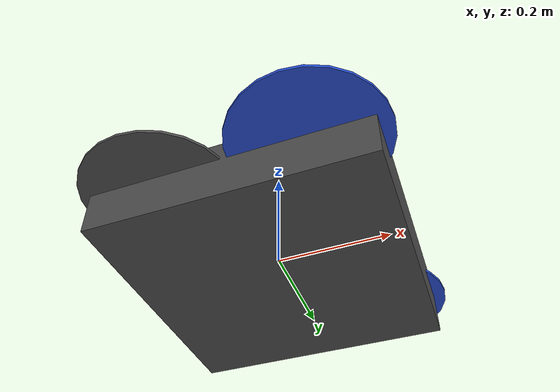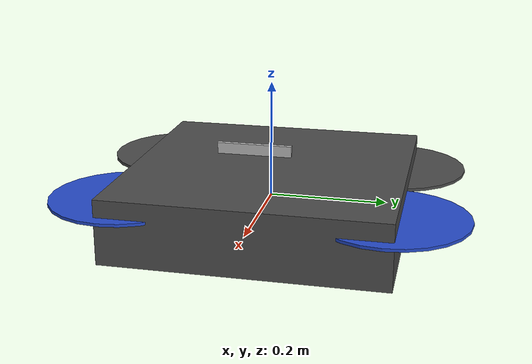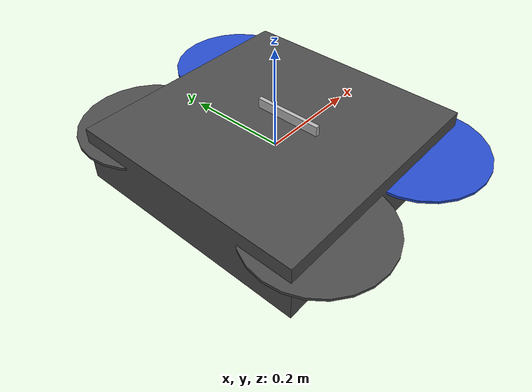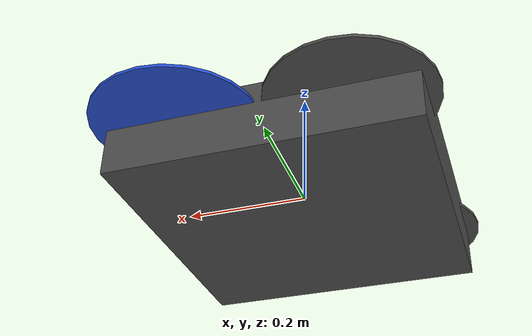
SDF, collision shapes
<sdf version='1.6'>
  <model name='iris_d435'>
    <link name='base_link'>
      <pose frame=''>0 0 0 0 -0 0</pose>
      <inertial>
        <pose frame=''>0 0 0 0 -0 0</pose>
        <mass>1.5</mass>
        <inertia>
          <ixx>0.0347563</ixx>
          <ixy>0</ixy>
          <ixz>0</ixz>
          <iyy>0.0458929</iyy>
          <iyz>0</iyz>
          <izz>0.0977</izz>
        </inertia>
      </inertial>
      <collision name='base_link_inertia_collision'>
        <pose frame=''>0 0 0 0 -0 0</pose>
        <geometry>
          <box>
            <size>0.47 0.47 0.11</size>
          </box>
        </geometry>
        <surface>
          <contact>
            <ode>
              <min_depth>0.001</min_depth>
              <max_vel>0</max_vel>
            </ode>
          </contact>
          <friction>
            <ode/>
          </friction>
        </surface>
      </collision>
      <visual name='base_link_inertia_visual'>
        <pose frame=''>0 0 0 0 -0 0</pose>
        <geometry>
          <mesh>
            <scale>1 1 1</scale>
            <uri>model://rotors_description/meshes/iris.stl</uri>
          </mesh>
        </geometry>
        <material>
          <script>
            <name>Gazebo/DarkGrey</name>
            <uri>file://media/materials/scripts/gazebo.material</uri>
          </script>
        </material>
      </visual>
      <gravity>1</gravity>
      <velocity_decay/>
    </link>
    <link name='/imu_link'>
      <pose frame=''>0 0 0 0 -0 0</pose>
      <inertial>
        <pose frame=''>0 0 0 0 -0 0</pose>
        <mass>0.015</mass>
        <inertia>
          <ixx>1e-05</ixx>
          <ixy>0</ixy>
          <ixz>0</ixz>
          <iyy>1e-05</iyy>
          <iyz>0</iyz>
          <izz>1e-05</izz>
        </inertia>
      </inertial>
    </link>
    <joint name='/imu_joint' type='revolute'>
      <child>/imu_link</child>
      <parent>base_link</parent>
      <axis>
        <xyz>1 0 0</xyz>
        <limit>
          <lower>0</lower>
          <upper>0</upper>
          <effort>0</effort>
          <velocity>0</velocity>
        </limit>
        <dynamics>
          <spring_reference>0</spring_reference>
          <spring_stiffness>0</spring_stiffness>
        </dynamics>
        <use_parent_model_frame>1</use_parent_model_frame>
      </axis>
    </joint>
    <link name='rotor_0'>
      <pose frame=''>0.13 -0.22 0.023 0 -0 0</pose>
      <inertial>
        <pose frame=''>0 0 0 0 -0 0</pose>
        <mass>0.005</mass>
        <inertia>
          <ixx>9.75e-07</ixx>
          <ixy>0</ixy>
          <ixz>0</ixz>
          <iyy>0.000273104</iyy>
          <iyz>0</iyz>
          <izz>0.000274004</izz>
        </inertia>
      </inertial>
      <collision name='rotor_0_collision'>
        <pose frame=''>0 0 0 0 -0 0</pose>
        <geometry>
          <cylinder>
            <length>0.005</length>
            <radius>0.128</radius>
          </cylinder>
        </geometry>
        <surface>
          <contact>
            <ode/>
          </contact>
          <friction>
            <ode/>
          </friction>
        </surface>
      </collision>
      <visual name='rotor_0_visual'>
        <pose frame=''>0 0 0 0 -0 0</pose>
        <geometry>
          <mesh>
            <scale>1 1 1</scale>
            <uri>model://rotors_description/meshes/iris_prop_ccw.dae</uri>
          </mesh>
        </geometry>
        <material>
          <script>
            <name>Gazebo/Blue</name>
            <uri>file://media/materials/scripts/gazebo.material</uri>
          </script>
        </material>
      </visual>
      <gravity>1</gravity>
      <velocity_decay/>
    </link>
    <joint name='rotor_0_joint' type='revolute'>
      <child>rotor_0</child>
      <parent>base_link</parent>
      <axis>
        <xyz>0 0 1</xyz>
        <limit>
          <lower>-1e+16</lower>
          <upper>1e+16</upper>
        </limit>
        <dynamics>
          <spring_reference>0</spring_reference>
          <spring_stiffness>0</spring_stiffness>
        </dynamics>
        <use_parent_model_frame>1</use_parent_model_frame>
      </axis>
    </joint>
    <link name='rotor_1'>
      <pose frame=''>-0.13 0.2 0.023 0 -0 0</pose>
      <inertial>
        <pose frame=''>0 0 0 0 -0 0</pose>
        <mass>0.005</mass>
        <inertia>
          <ixx>9.75e-07</ixx>
          <ixy>0</ixy>
          <ixz>0</ixz>
          <iyy>0.000273104</iyy>
          <iyz>0</iyz>
          <izz>0.000274004</izz>
        </inertia>
      </inertial>
      <collision name='rotor_1_collision'>
        <pose frame=''>0 0 0 0 -0 0</pose>
        <geometry>
          <cylinder>
            <length>0.005</length>
            <radius>0.128</radius>
          </cylinder>
        </geometry>
        <surface>
          <contact>
            <ode/>
          </contact>
          <friction>
            <ode/>
          </friction>
        </surface>
      </collision>
      <visual name='rotor_1_visual'>
        <pose frame=''>0 0 0 0 -0 0</pose>
        <geometry>
          <mesh>
            <scale>1 1 1</scale>
            <uri>model://rotors_description/meshes/iris_prop_ccw.dae</uri>
          </mesh>
        </geometry>
        <material>
          <script>
            <name>Gazebo/DarkGrey</name>
            <uri>file://media/materials/scripts/gazebo.material</uri>
          </script>
        </material>
      </visual>
      <gravity>1</gravity>
      <velocity_decay/>
    </link>
    <joint name='rotor_1_joint' type='revolute'>
      <child>rotor_1</child>
      <parent>base_link</parent>
      <axis>
        <xyz>0 0 1</xyz>
        <limit>
          <lower>-1e+16</lower>
          <upper>1e+16</upper>
        </limit>
        <dynamics>
          <spring_reference>0</spring_reference>
          <spring_stiffness>0</spring_stiffness>
        </dynamics>
        <use_parent_model_frame>1</use_parent_model_frame>
      </axis>
    </joint>
    <link name='rotor_2'>
      <pose frame=''>0.13 0.22 0.023 0 -0 0</pose>
      <inertial>
        <pose frame=''>0 0 0 0 -0 0</pose>
        <mass>0.005</mass>
        <inertia>
          <ixx>9.75e-07</ixx>
          <ixy>0</ixy>
          <ixz>0</ixz>
          <iyy>0.000273104</iyy>
          <iyz>0</iyz>
          <izz>0.000274004</izz>
        </inertia>
      </inertial>
      <collision name='rotor_2_collision'>
        <pose frame=''>0 0 0 0 -0 0</pose>
        <geometry>
          <cylinder>
            <length>0.005</length>
            <radius>0.128</radius>
          </cylinder>
        </geometry>
        <surface>
          <contact>
            <ode/>
          </contact>
          <friction>
            <ode/>
          </friction>
        </surface>
      </collision>
      <visual name='rotor_2_visual'>
        <pose frame=''>0 0 0 0 -0 0</pose>
        <geometry>
          <mesh>
            <scale>1 1 1</scale>
            <uri>model://rotors_description/meshes/iris_prop_cw.dae</uri>
          </mesh>
        </geometry>
        <material>
          <script>
            <name>Gazebo/Blue</name>
            <uri>file://media/materials/scripts/gazebo.material</uri>
          </script>
        </material>
      </visual>
      <gravity>1</gravity>
      <velocity_decay/>
    </link>
    <joint name='rotor_2_joint' type='revolute'>
      <child>rotor_2</child>
      <parent>base_link</parent>
      <axis>
        <xyz>0 0 1</xyz>
        <limit>
          <lower>-1e+16</lower>
          <upper>1e+16</upper>
        </limit>
        <dynamics>
          <spring_reference>0</spring_reference>
          <spring_stiffness>0</spring_stiffness>
        </dynamics>
        <use_parent_model_frame>1</use_parent_model_frame>
      </axis>
    </joint>
    <link name='rotor_3'>
      <pose frame=''>-0.13 -0.2 0.023 0 -0 0</pose>
      <inertial>
        <pose frame=''>0 0 0 0 -0 0</pose>
        <mass>0.005</mass>
        <inertia>
          <ixx>9.75e-07</ixx>
          <ixy>0</ixy>
          <ixz>0</ixz>
          <iyy>0.000273104</iyy>
          <iyz>0</iyz>
          <izz>0.000274004</izz>
        </inertia>
      </inertial>
      <collision name='rotor_3_collision'>
        <pose frame=''>0 0 0 0 -0 0</pose>
        <geometry>
          <cylinder>
            <length>0.005</length>
            <radius>0.128</radius>
          </cylinder>
        </geometry>
        <surface>
          <contact>
            <ode/>
          </contact>
          <friction>
            <ode/>
          </friction>
        </surface>
      </collision>
      <visual name='rotor_3_visual'>
        <pose frame=''>0 0 0 0 -0 0</pose>
        <geometry>
          <mesh>
            <scale>1 1 1</scale>
            <uri>model://rotors_description/meshes/iris_prop_cw.dae</uri>
          </mesh>
        </geometry>
        <material>
          <script>
            <name>Gazebo/DarkGrey</name>
            <uri>file://media/materials/scripts/gazebo.material</uri>
          </script>
        </material>
      </visual>
      <gravity>1</gravity>
      <velocity_decay/>
    </link>
    <joint name='rotor_3_joint' type='revolute'>
      <child>rotor_3</child>
      <parent>base_link</parent>
      <axis>
        <xyz>0 0 1</xyz>
        <limit>
          <lower>-1e+16</lower>
          <upper>1e+16</upper>
        </limit>
        <dynamics>
          <spring_reference>0</spring_reference>
          <spring_stiffness>0</spring_stiffness>
        </dynamics>
        <use_parent_model_frame>1</use_parent_model_frame>
      </axis>
    </joint>
    <plugin name='rosbag' filename='libgazebo_multirotor_base_plugin.so'>
      <robotNamespace/>
      <linkName>base_link</linkName>
      <rotorVelocitySlowdownSim>10</rotorVelocitySlowdownSim>
    </plugin>
    <plugin name='front_right_motor_model' filename='libgazebo_motor_model.so'>
      <robotNamespace/>
      <jointName>rotor_0_joint</jointName>
      <linkName>rotor_0</linkName>
      <turningDirection>ccw</turningDirection>
      <timeConstantUp>0.0125</timeConstantUp>
      <timeConstantDown>0.025</timeConstantDown>
      <maxRotVelocity>1100</maxRotVelocity>
      <motorConstant>8.54858e-06</motorConstant>
      <momentConstant>0.06</momentConstant>
      <commandSubTopic>/gazebo/command/motor_speed</commandSubTopic>
      <motorNumber>0</motorNumber>
      <rotorDragCoefficient>0.000806428</rotorDragCoefficient>
      <rollingMomentCoefficient>1e-06</rollingMomentCoefficient>
      <motorSpeedPubTopic>/motor_speed/0</motorSpeedPubTopic>
      <rotorVelocitySlowdownSim>10</rotorVelocitySlowdownSim>
    </plugin>
    <plugin name='back_left_motor_model' filename='libgazebo_motor_model.so'>
      <robotNamespace/>
      <jointName>rotor_1_joint</jointName>
      <linkName>rotor_1</linkName>
      <turningDirection>ccw</turningDirection>
      <timeConstantUp>0.0125</timeConstantUp>
      <timeConstantDown>0.025</timeConstantDown>
      <maxRotVelocity>1100</maxRotVelocity>
      <motorConstant>8.54858e-06</motorConstant>
      <momentConstant>0.06</momentConstant>
      <commandSubTopic>/gazebo/command/motor_speed</commandSubTopic>
      <motorNumber>1</motorNumber>
      <rotorDragCoefficient>0.000806428</rotorDragCoefficient>
      <rollingMomentCoefficient>1e-06</rollingMomentCoefficient>
      <motorSpeedPubTopic>/motor_speed/1</motorSpeedPubTopic>
      <rotorVelocitySlowdownSim>10</rotorVelocitySlowdownSim>
    </plugin>
    <plugin name='front_left_motor_model' filename='libgazebo_motor_model.so'>
      <robotNamespace/>
      <jointName>rotor_2_joint</jointName>
      <linkName>rotor_2</linkName>
      <turningDirection>cw</turningDirection>
      <timeConstantUp>0.0125</timeConstantUp>
      <timeConstantDown>0.025</timeConstantDown>
      <maxRotVelocity>1100</maxRotVelocity>
      <motorConstant>8.54858e-06</motorConstant>
      <momentConstant>0.06</momentConstant>
      <commandSubTopic>/gazebo/command/motor_speed</commandSubTopic>
      <motorNumber>2</motorNumber>
      <rotorDragCoefficient>0.000806428</rotorDragCoefficient>
      <rollingMomentCoefficient>1e-06</rollingMomentCoefficient>
      <motorSpeedPubTopic>/motor_speed/2</motorSpeedPubTopic>
      <rotorVelocitySlowdownSim>10</rotorVelocitySlowdownSim>
    </plugin>
    <plugin name='back_right_motor_model' filename='libgazebo_motor_model.so'>
      <robotNamespace/>
      <jointName>rotor_3_joint</jointName>
      <linkName>rotor_3</linkName>
      <turningDirection>cw</turningDirection>
      <timeConstantUp>0.0125</timeConstantUp>
      <timeConstantDown>0.025</timeConstantDown>
      <maxRotVelocity>1100</maxRotVelocity>
      <motorConstant>8.54858e-06</motorConstant>
      <momentConstant>0.06</momentConstant>
      <commandSubTopic>/gazebo/command/motor_speed</commandSubTopic>
      <motorNumber>3</motorNumber>
      <rotorDragCoefficient>0.000806428</rotorDragCoefficient>
      <rollingMomentCoefficient>1e-06</rollingMomentCoefficient>
      <motorSpeedPubTopic>/motor_speed/3</motorSpeedPubTopic>
      <rotorVelocitySlowdownSim>10</rotorVelocitySlowdownSim>
    </plugin>
    <plugin name='gps_plugin' filename='libgazebo_gps_plugin.so'>
      <robotNamespace/>
      <gpsNoise>1</gpsNoise>
    </plugin>
    <plugin name='mavlink_interface' filename='libgazebo_mavlink_interface.so'>
      <robotNamespace/>
      <imuSubTopic>/imu</imuSubTopic>
      <gpsSubTopic>/gps</gpsSubTopic>
      <mavlink_addr>INADDR_ANY</mavlink_addr>
      <mavlink_udp_port>14560</mavlink_udp_port>
      <serialEnabled>0</serialEnabled>
      <serialDevice>/dev/ttyACM0</serialDevice>
      <baudRate>921600</baudRate>
      <qgc_addr>INADDR_ANY</qgc_addr>
      <qgc_udp_port>14550</qgc_udp_port>
      <hil_mode>0</hil_mode>
      <hil_state_level>0</hil_state_level>
      <vehicle_is_tailsitter>0</vehicle_is_tailsitter>
      <motorSpeedCommandPubTopic>/gazebo/command/motor_speed</motorSpeedCommandPubTopic>
      <control_channels>
        <channel name='rotor1'>
          <input_index>0</input_index>
          <input_offset>0</input_offset>
          <input_scaling>1000</input_scaling>
          <zero_position_disarmed>0</zero_position_disarmed>
          <zero_position_armed>100</zero_position_armed>
          <joint_control_type>velocity</joint_control_type>
        </channel>
        <channel name='rotor2'>
          <input_index>1</input_index>
          <input_offset>0</input_offset>
          <input_scaling>1000</input_scaling>
          <zero_position_disarmed>0</zero_position_disarmed>
          <zero_position_armed>100</zero_position_armed>
          <joint_control_type>velocity</joint_control_type>
        </channel>
        <channel name='rotor3'>
          <input_index>2</input_index>
          <input_offset>0</input_offset>
          <input_scaling>1000</input_scaling>
          <zero_position_disarmed>0</zero_position_disarmed>
          <zero_position_armed>100</zero_position_armed>
          <joint_control_type>velocity</joint_control_type>
        </channel>
        <channel name='rotor4'>
          <input_index>3</input_index>
          <input_offset>0</input_offset>
          <input_scaling>1000</input_scaling>
          <zero_position_disarmed>0</zero_position_disarmed>
          <zero_position_armed>100</zero_position_armed>
          <joint_control_type>velocity</joint_control_type>
        </channel>
        <channel name='rotor5'>
          <input_index>4</input_index>
          <input_offset>1</input_offset>
          <input_scaling>324.6</input_scaling>
          <zero_position_disarmed>0</zero_position_disarmed>
          <zero_position_armed>0</zero_position_armed>
          <joint_control_type>velocity</joint_control_type>
          <joint_control_pid>
            <p>0.1</p>
            <i>0</i>
            <d>0</d>
            <iMax>0.0</iMax>
            <iMin>0.0</iMin>
            <cmdMax>2</cmdMax>
            <cmdMin>-2</cmdMin>
          </joint_control_pid>
          <joint_name>zephyr_delta_wing::propeller_joint</joint_name>
        </channel>
        <channel name='rotor6'>
          <input_index>5</input_index>
          <input_offset>0</input_offset>
          <input_scaling>0.524</input_scaling>
          <zero_position_disarmed>0</zero_position_disarmed>
          <zero_position_armed>0</zero_position_armed>
          <joint_control_type>position</joint_control_type>
          <joint_name>zephyr_delta_wing::flap_left_joint</joint_name>
          <joint_control_pid>
            <p>10.0</p>
            <i>0</i>
            <d>0</d>
            <iMax>0</iMax>
            <iMin>0</iMin>
            <cmdMax>20</cmdMax>
            <cmdMin>-20</cmdMin>
          </joint_control_pid>
        </channel>
        <channel name='rotor7'>
          <input_index>6</input_index>
          <input_offset>0</input_offset>
          <input_scaling>0.524</input_scaling>
          <zero_position_disarmed>0</zero_position_disarmed>
          <zero_position_armed>0</zero_position_armed>
          <joint_control_type>position</joint_control_type>
          <joint_name>zephyr_delta_wing::flap_right_joint</joint_name>
          <joint_control_pid>
            <p>10.0</p>
            <i>0</i>
            <d>0</d>
            <iMax>0</iMax>
            <iMin>0</iMin>
            <cmdMax>20</cmdMax>
            <cmdMin>-20</cmdMin>
          </joint_control_pid>
        </channel>
        <channel name='rotor8'>
          <input_index>7</input_index>
          <input_offset>0</input_offset>
          <input_scaling>0.524</input_scaling>
          <zero_position_disarmed>0</zero_position_disarmed>
          <zero_position_armed>0</zero_position_armed>
          <joint_control_type>position</joint_control_type>
        </channel>
      </control_channels>
    </plugin>
    <static>0</static>
    <plugin name='rotors_gazebo_imu_plugin' filename='libgazebo_imu_plugin.so'>
      <robotNamespace/>
      <linkName>/imu_link</linkName>
      <imuTopic>/imu</imuTopic>
      <gyroscopeNoiseDensity>0.0003394</gyroscopeNoiseDensity>
      <gyroscopeRandomWalk>3.8785e-05</gyroscopeRandomWalk>
      <gyroscopeBiasCorrelationTime>1000.0</gyroscopeBiasCorrelationTime>
      <gyroscopeTurnOnBiasSigma>0.0087</gyroscopeTurnOnBiasSigma>
      <accelerometerNoiseDensity>0.004</accelerometerNoiseDensity>
      <accelerometerRandomWalk>0.006</accelerometerRandomWalk>
      <accelerometerBiasCorrelationTime>300.0</accelerometerBiasCorrelationTime>
      <accelerometerTurnOnBiasSigma>0.196</accelerometerTurnOnBiasSigma>
    </plugin>
    <include>
      <uri>model://realsense_d435</uri>
      <pose>0 -0.03 0.08 0 0 3.14159265</pose>
    </include>
    <joint name="realsense_d435_joint" type="fixed">
      <child>realsense_camera::link</child>
      <parent>base_link</parent>
    </joint>
  </model>
</sdf>

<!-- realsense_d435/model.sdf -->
<sdf version="1.6">
  <model name="realsense_camera">
    <!--plugin name="realsense_plugin" filename="libRealSensePlugin.so"/-->
    <pose frame="">0 0 0.015 0 0 0</pose>
    <link name="link">
      <inertial>
        <mass>0.0615752</mass>
        <inertia>
          <ixx>9.108e-05</ixx>
          <ixy>0</ixy>
          <ixz>0</ixz>
          <iyy>2.51e-06</iyy>
          <iyz>0</iyz>
          <izz>8.931e-05</izz>
        </inertia>
        <pose frame=''>0 0 0 0 -0 0</pose>
      </inertial>
      <self_collide>0</self_collide>
      <enable_wind>0</enable_wind>
      <kinematic>0</kinematic>
      <gravity>1</gravity>
      <visual name="visual">
        <geometry>
          <mesh>
            <uri>model://rotors_description/meshes/d435.dae</uri>
          </mesh>
        </geometry>
      </visual>
      <collision name='collision'>
        <laser_retro>0</laser_retro>
        <max_contacts>10</max_contacts>
        <pose frame=''>0 0 0 0 -0 0</pose>
        <geometry>
          <box>
            <size>0.0078 0.130 0.0192</size>
          </box>
        </geometry>
        <surface>
          <friction>
            <ode>
              <mu>1</mu>
              <mu2>1</mu2>
              <fdir1>0 0 0</fdir1>
              <slip1>0</slip1>
              <slip2>0</slip2>
            </ode>
            <torsional>
              <coefficient>1</coefficient>
              <patch_radius>0</patch_radius>
              <surface_radius>0</surface_radius>
              <use_patch_radius>1</use_patch_radius>
              <ode>
                <slip>0</slip>
              </ode>
            </torsional>
          </friction>
          <bounce>
            <restitution_coefficient>0</restitution_coefficient>
            <threshold>1e+06</threshold>
          </bounce>
          <contact>
            <collide_without_contact>0</collide_without_contact>
            <collide_without_contact_bitmask>1</collide_without_contact_bitmask>
            <collide_bitmask>1</collide_bitmask>
            <ode>
              <soft_cfm>0</soft_cfm>
              <soft_erp>0.2</soft_erp>
              <kp>1e+13</kp>
              <kd>1</kd>
              <max_vel>0.01</max_vel>
              <min_depth>0</min_depth>
            </ode>
            <bullet>
              <split_impulse>1</split_impulse>
              <split_impulse_penetration_threshold>-0.01</split_impulse_penetration_threshold>
              <soft_cfm>0</soft_cfm>
              <soft_erp>0.2</soft_erp>
              <kp>1e+13</kp>
              <kd>1</kd>
            </bullet>
          </contact>
        </surface>
      </collision>
      <sensor name="color" type="camera">
        <pose frame="">0 -0.046 0.004 0 0 0</pose>
        <camera name="__default__">
          <horizontal_fov>1.047</horizontal_fov>
          <image>
            <width>640</width>
            <height>480</height>
            <format>RGB_INT8</format>
          </image>
          <clip>
            <near>0.1</near>
            <far>100</far>
          </clip>
          <noise>
            <type>gaussian</type>
            <mean>0.0</mean>
            <stddev>0.007</stddev>
          </noise>
        </camera>
        <always_on>1</always_on>
        <update_rate>60</update_rate>
        <visualize>1</visualize>
      </sensor>
      <sensor name="ired1" type="camera">
        <pose frame="">0 -0.06 0.004 0 0 0</pose>
        <camera name="__default__">
          <horizontal_fov>1.047</horizontal_fov>
          <image>
            <width>640</width>
            <height>480</height>
            <format>L_INT8</format>
          </image>
          <clip>
            <near>0.1</near>
            <far>100</far>
          </clip>
          <noise>
            <type>gaussian</type>
            <mean>0.0</mean>
            <stddev>0.007</stddev>
          </noise>
        </camera>
        <always_on>1</always_on>
        <update_rate>60</update_rate>
        <visualize>0</visualize>
      </sensor>
      <sensor name="ired2" type="camera">
        <pose frame="">0 0.01 0.004 0 0 0</pose>
        <camera name="__default__">
          <horizontal_fov>1.047</horizontal_fov>
          <image>
            <width>640</width>
            <height>480</height>
            <format>L_INT8</format>
          </image>
          <clip>
            <near>0.1</near>
            <far>100</far>
          </clip>
          <noise>
            <type>gaussian</type>
            <mean>0.0</mean>
            <stddev>0.007</stddev>
          </noise>
        </camera>
        <always_on>1</always_on>
        <update_rate>60</update_rate>
        <visualize>0</visualize>
      </sensor>
      <sensor name="depth" type="depth">
        <pose frame="">0 -0.03 0.004 0 0 0</pose>
        <camera name="__default__">
          <horizontal_fov>1.047</horizontal_fov>
          <image>
            <width>640</width>
            <height>480</height>
          </image>
          <clip>
            <near>0.1</near>
            <far>100</far>
          </clip>
          <noise>
            <type>gaussian</type>
            <mean>0.0</mean>
            <stddev>0.007</stddev>
          </noise>
        </camera>
        <plugin name="camera_plugin" filename="libgazebo_ros_openni_kinect.so">
          <baseline>0.2</baseline>
          <alwaysOn>true</alwaysOn>
          <updateRate>0.0</updateRate>
          <cameraName>camera_ir</cameraName>
          <imageTopicName>/camera/color/image_raw</imageTopicName>
          <cameraInfoTopicName>/camera/color/camera_info</cameraInfoTopicName>
          <depthImageTopicName>/camera/depth/image_raw</depthImageTopicName>
          <depthImageCameraInfoTopicName>/camera/depth/camera_info</depthImageCameraInfoTopicName>
          <pointCloudTopicName>/camera/depth/points</pointCloudTopicName>
          <frameName>camera_link</frameName>
          <pointCloudCutoff>0.5</pointCloudCutoff>
          <pointCloudCutoffMax>3.0</pointCloudCutoffMax>
          <distortionK1>0</distortionK1>
          <distortionK2>0</distortionK2>
          <distortionK3>0</distortionK3>
          <distortionT1>0</distortionT1>
          <distortionT2>0</distortionT2>
          <CxPrime>0</CxPrime>
          <Cx>0</Cx>
          <Cy>0</Cy>
          <focalLength>0</focalLength>
          <hackBaseline>0</hackBaseline>
        </plugin>
        <always_on>1</always_on>
        <update_rate>60</update_rate>
        <visualize>0</visualize>
      </sensor>
    </link>
  </model>
</sdf>
